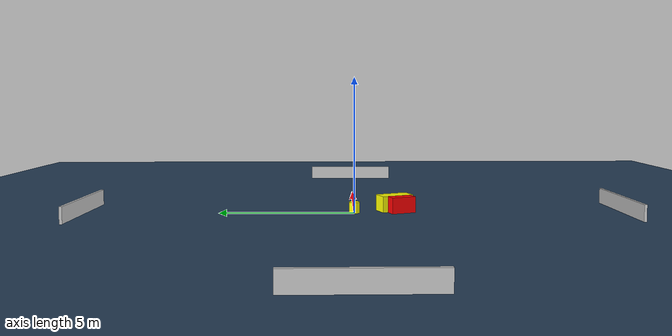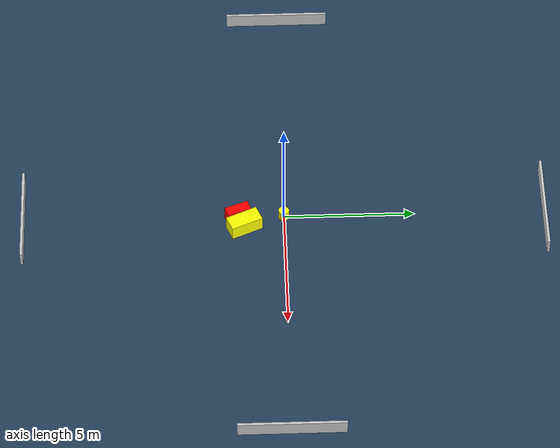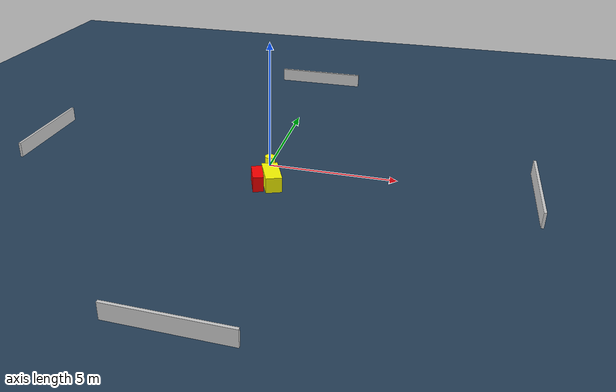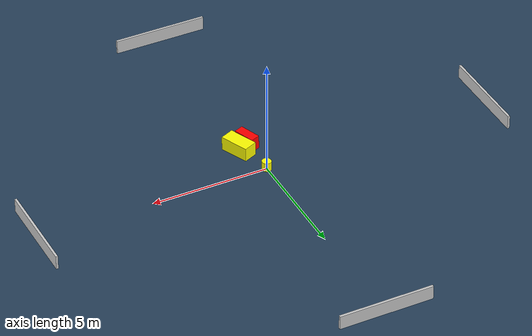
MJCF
<?xml version="1.0" ?>
<mujoco model="generated_environment">
  <option timestep="0.01" integrator="RK4" cone="elliptic"/>
  <default>
    <geom density="1"/>
  </default>
  <asset>
    <texture builtin="gradient" height="3072" name="skybox" rgb1="0.3 0.5 0.7" rgb2="0 0 0" type="skybox" width="512"/>
    <texture builtin="checker" height="300" name="groundplane" rgb1="0.2 0.3 0.4" rgb2="0.1 0.2 0.3" type="2d" width="300"/>
    <material name="groundplane" reflectance="0.2" texrepeat="5 5" texture="groundplane"/>
  </asset>
  <worldbody>
    <light dir="0 0 -1" directional="true" pos="0 0 1.5"/>
    <geom condim="3" friction="0.5 0.005 0.001" material="groundplane" name="floor" pos="0 0 0" size="0 0 0.05" type="plane"/>
    <body name="walls">
      <geom name="wall_1" condim="4" pos="-10.0 0.0 0.3" rgba="0.800000011920929 0.800000011920929 0.800000011920929 1.0" size="0.05 2.0 0.3" type="box"/>
      <geom name="wall_2" condim="4" pos="10.0 0.0 0.3" rgba="0.800000011920929 0.800000011920929 0.800000011920929 1.0" size="0.05 2.0 0.3" type="box"/>
      <geom name="wall_3" condim="4" pos="0.0 -10.0 0.3" rgba="0.800000011920929 0.800000011920929 0.800000011920929 1.0" size="2.0 0.05 0.3" type="box"/>
      <geom name="wall_4" condim="4" pos="0.0 10.0 0.3" rgba="0.800000011920929 0.800000011920929 0.800000011920929 1.0" size="2.0 0.05 0.3" type="box"/>
    </body>
    <body name="robot">
      <joint name="joint_x" type="slide" pos="0 0 0" axis="1 0 0"/>
      <joint name="joint_y" type="slide" pos="0 0 0" axis="0 1 0"/>
      <geom name="robot" type="cylinder" pos="0.0 0.0 0.2" size="0.2 0.2 0.0" mass="5.0" friction="1.0 0.005 0.0001" condim="4" rgba="1.0 1.0 0.0 1.0"/>
    </body>
    <body name="obstacle_1_movable">
      <geom name="obstacle_1_movable" condim="4" pos="0.4882396838219645 -1.5249577143940947 0.3" euler="0 0 203.29259640071933" friction="0.0 0.005 0.001" rgba="1.0 1.0 0.0 1.0" size="0.3067982438555924 0.6297957339941668 0.3" type="box" mass="0.1"/>
      <joint type="free"/>
    </body>
    <body name="obstacle_2_static">
      <geom name="obstacle_2_static" condim="4" pos="0.0027574058914871576 -1.7584042552843497 0.3" euler="0 0 200.46270247305208" friction="0.0 0.005 0.001" rgba="1.0 0.0 0.0 1.0" size="0.20407925766481877 0.4669342998161052 0.3" type="box"/>
    </body>
  </worldbody>
  <actuator>
    <motor name="actuator_x" joint="joint_x" gear="1" ctrlrange="-1 1"/>
    <motor name="actuator_y" joint="joint_y" gear="1" ctrlrange="-1 1"/>
  </actuator>
</mujoco>
